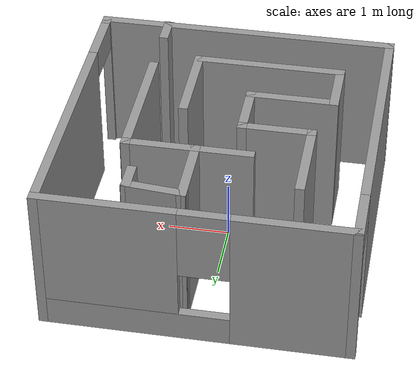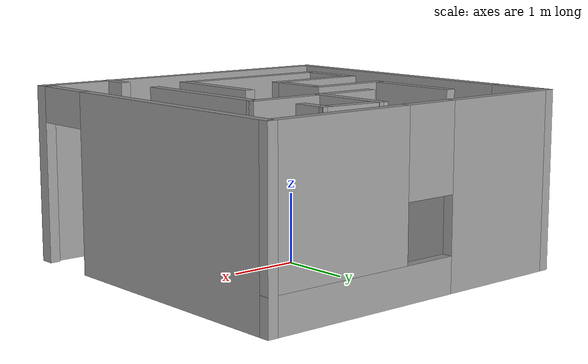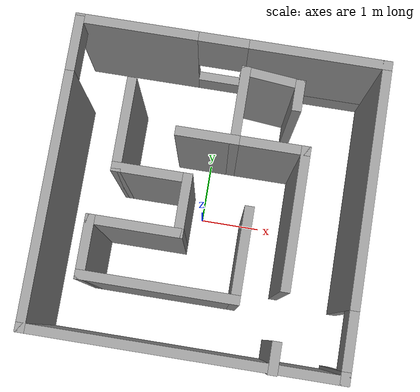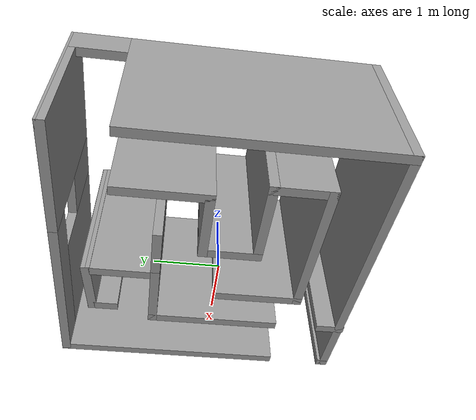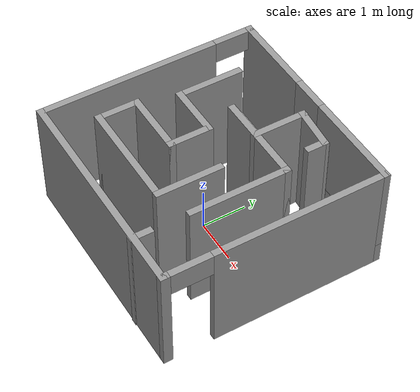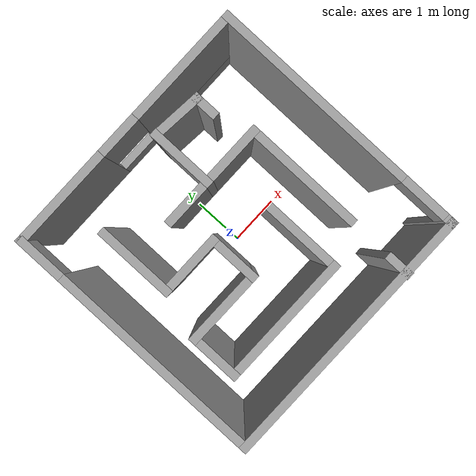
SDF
<?xml version='1.0'?>
<sdf version='1.6'>
  <model name='maze2'>
    <pose frame=''>0.085 0.08622 0 0 -0 0</pose>
    <link name='Wall_0'>
      <collision name='Wall_0_Collision'>
        <geometry>
          <box>
            <size>5 0.15 2.5</size>
          </box>
        </geometry>
        <pose frame=''>0 0 1.25 0 -0 0</pose>
      </collision>
      <visual name='Wall_0_Visual'>
        <pose frame=''>0 0 1.25 0 -0 0</pose>
        <geometry>
          <box>
            <size>5 0.15 2.5</size>
          </box>
        </geometry>
        <material>
          <script>
            <uri>file://media/materials/scripts/gazebo.material</uri>
            <name>Gazebo/Grey</name>
          </script>
          <ambient>1 1 1 1</ambient>
        </material>
        <meta>
          <layer>0</layer>
        </meta>
      </visual>
      <pose frame=''>-0 -2.41622 0 0 -0 0</pose>
    </link>
    <link name='Wall_10'>
      <collision name='Wall_10_Collision'>
        <geometry>
          <box>
            <size>1.5 0.15 2.5</size>
          </box>
        </geometry>
        <pose frame=''>0 0 1.25 0 -0 0</pose>
      </collision>
      <visual name='Wall_10_Visual'>
        <pose frame=''>0 0 1.25 0 -0 0</pose>
        <geometry>
          <box>
            <size>1.5 0.15 2.5</size>
          </box>
        </geometry>
        <material>
          <script>
            <uri>file://media/materials/scripts/gazebo.material</uri>
            <name>Gazebo/Grey</name>
          </script>
          <ambient>1 1 1 1</ambient>
        </material>
        <meta>
          <layer>0</layer>
        </meta>
      </visual>
      <pose frame=''>-1.44817 0.867949 0 0 -0 -1.5708</pose>
    </link>
    <link name='Wall_11'>
      <collision name='Wall_11_Collision'>
        <geometry>
          <box>
            <size>1.25 0.15 2.5</size>
          </box>
        </geometry>
        <pose frame=''>0 0 1.25 0 -0 0</pose>
      </collision>
      <visual name='Wall_11_Visual'>
        <pose frame=''>0 0 1.25 0 -0 0</pose>
        <geometry>
          <box>
            <size>1.25 0.15 2.5</size>
          </box>
        </geometry>
        <material>
          <script>
            <uri>file://media/materials/scripts/gazebo.material</uri>
            <name>Gazebo/Grey</name>
          </script>
          <ambient>1 1 1 1</ambient>
        </material>
        <meta>
          <layer>0</layer>
        </meta>
      </visual>
      <pose frame=''>-0.898169 0.192949 0 0 -0 0</pose>
    </link>
    <link name='Wall_12'>
      <collision name='Wall_12_Collision'>
        <geometry>
          <box>
            <size>1 0.15 2.5</size>
          </box>
        </geometry>
        <pose frame=''>0 0 1.25 0 -0 0</pose>
      </collision>
      <visual name='Wall_12_Visual'>
        <pose frame=''>0 0 1.25 0 -0 0</pose>
        <geometry>
          <box>
            <size>1 0.15 2.5</size>
          </box>
        </geometry>
        <material>
          <script>
            <uri>file://media/materials/scripts/gazebo.material</uri>
            <name>Gazebo/Grey</name>
          </script>
          <ambient>1 1 1 1</ambient>
        </material>
        <meta>
          <layer>0</layer>
        </meta>
      </visual>
      <pose frame=''>-0.348169 -0.232051 0 0 -0 -1.5708</pose>
    </link>
    <link name='Wall_13'>
      <collision name='Wall_13_Collision'>
        <geometry>
          <box>
            <size>1.5 0.15 2.5</size>
          </box>
        </geometry>
        <pose frame=''>0 0 1.25 0 -0 0</pose>
      </collision>
      <visual name='Wall_13_Visual'>
        <pose frame=''>0 0 1.25 0 -0 0</pose>
        <geometry>
          <box>
            <size>1.5 0.15 2.5</size>
          </box>
        </geometry>
        <material>
          <script>
            <uri>file://media/materials/scripts/gazebo.material</uri>
            <name>Gazebo/Grey</name>
          </script>
          <ambient>1 1 1 1</ambient>
        </material>
        <meta>
          <layer>0</layer>
        </meta>
      </visual>
      <pose frame=''>-1.02317 -0.657051 0 0 -0 3.14159</pose>
    </link>
    <link name='Wall_14'>
      <collision name='Wall_14_Collision'>
        <geometry>
          <box>
            <size>1 0.15 2.5</size>
          </box>
        </geometry>
        <pose frame=''>0 0 1.25 0 -0 0</pose>
      </collision>
      <visual name='Wall_14_Visual'>
        <pose frame=''>0 0 1.25 0 -0 0</pose>
        <geometry>
          <box>
            <size>1 0.15 2.5</size>
          </box>
        </geometry>
        <material>
          <script>
            <uri>file://media/materials/scripts/gazebo.material</uri>
            <name>Gazebo/Grey</name>
          </script>
          <ambient>1 1 1 1</ambient>
        </material>
        <meta>
          <layer>0</layer>
        </meta>
      </visual>
      <pose frame=''>-1.69817 -1.08205 0 0 -0 -1.5708</pose>
    </link>
    <link name='Wall_15'>
      <collision name='Wall_15_Collision'>
        <geometry>
          <box>
            <size>2.5 0.15 2.5</size>
          </box>
        </geometry>
        <pose frame=''>0 0 1.25 0 -0 0</pose>
      </collision>
      <visual name='Wall_15_Visual'>
        <pose frame=''>0 0 1.25 0 -0 0</pose>
        <geometry>
          <box>
            <size>2.5 0.15 2.5</size>
          </box>
        </geometry>
        <material>
          <script>
            <uri>file://media/materials/scripts/gazebo.material</uri>
            <name>Gazebo/Grey</name>
          </script>
          <ambient>1 1 1 1</ambient>
        </material>
        <meta>
          <layer>0</layer>
        </meta>
      </visual>
      <pose frame=''>-0.523169 -1.50705 0 0 -0 0</pose>
    </link>
    <link name='Wall_16'>
      <collision name='Wall_16_Collision'>
        <geometry>
          <box>
            <size>1.5 0.15 2.5</size>
          </box>
        </geometry>
        <pose frame=''>0 0 1.25 0 -0 0</pose>
      </collision>
      <visual name='Wall_16_Visual'>
        <pose frame=''>0 0 1.25 0 -0 0</pose>
        <geometry>
          <box>
            <size>1.5 0.15 2.5</size>
          </box>
        </geometry>
        <material>
          <script>
            <uri>file://media/materials/scripts/gazebo.material</uri>
            <name>Gazebo/Grey</name>
          </script>
          <ambient>1 1 1 1</ambient>
        </material>
        <meta>
          <layer>0</layer>
        </meta>
      </visual>
      <pose frame=''>0.651831 -0.832051 0 0 -0 1.5708</pose>
    </link>
    <link name='Wall_19'>
      <collision name='Wall_19_Collision'>
        <geometry>
          <box>
            <size>1.25 0.15 2.5</size>
          </box>
        </geometry>
        <pose frame=''>0 0 1.25 0 -0 0</pose>
      </collision>
      <visual name='Wall_19_Visual'>
        <pose frame=''>0 0 1.25 0 -0 0</pose>
        <geometry>
          <box>
            <size>1.25 0.15 2.5</size>
          </box>
        </geometry>
        <material>
          <script>
            <uri>file://media/materials/scripts/gazebo.material</uri>
            <name>Gazebo/Grey</name>
          </script>
          <ambient>1 1 1 1</ambient>
        </material>
        <meta>
          <layer>0</layer>
        </meta>
      </visual>
      <pose frame=''>0.267544 1.44515 0 0 -0 -1.5708</pose>
    </link>
    <link name='Wall_20'>
      <collision name='Wall_20_Collision'>
        <geometry>
          <box>
            <size>1 0.15 2.5</size>
          </box>
        </geometry>
        <pose frame=''>0 0 1.25 0 -0 0</pose>
      </collision>
      <visual name='Wall_20_Visual'>
        <pose frame=''>0 0 1.25 0 -0 0</pose>
        <geometry>
          <box>
            <size>1 0.15 2.5</size>
          </box>
        </geometry>
        <material>
          <script>
            <uri>file://media/materials/scripts/gazebo.material</uri>
            <name>Gazebo/Grey</name>
          </script>
          <ambient>1 1 1 1</ambient>
        </material>
        <meta>
          <layer>0</layer>
        </meta>
      </visual>
      <pose frame=''>-0.157456 0.895153 0 0 -0 3.14159</pose>
    </link>
    <link name='Wall_22'>
      <collision name='Wall_22_Collision'>
        <geometry>
          <box>
            <size>1.25 0.15 2.5</size>
          </box>
        </geometry>
        <pose frame=''>0 0 1.25 0 -0 0</pose>
      </collision>
      <visual name='Wall_22_Visual'>
        <pose frame=''>0 0 1.25 0 -0 0</pose>
        <geometry>
          <box>
            <size>1.25 0.15 2.5</size>
          </box>
        </geometry>
        <material>
          <script>
            <uri>file://media/materials/scripts/gazebo.material</uri>
            <name>Gazebo/Grey</name>
          </script>
          <ambient>1 1 1 1</ambient>
        </material>
        <meta>
          <layer>0</layer>
        </meta>
      </visual>
      <pose frame=''>0.817544 0.895153 0 0 -0 0</pose>
    </link>
    <link name='Wall_23'>
      <collision name='Wall_23_Collision'>
        <geometry>
          <box>
            <size>2.25 0.15 2.5</size>
          </box>
        </geometry>
        <pose frame=''>0 0 1.25 0 -0 0</pose>
      </collision>
      <visual name='Wall_23_Visual'>
        <pose frame=''>0 0 1.25 0 -0 0</pose>
        <geometry>
          <box>
            <size>2.25 0.15 2.5</size>
          </box>
        </geometry>
        <material>
          <script>
            <uri>file://media/materials/scripts/gazebo.material</uri>
            <name>Gazebo/Grey</name>
          </script>
          <ambient>1 1 1 1</ambient>
        </material>
        <meta>
          <layer>0</layer>
        </meta>
      </visual>
      <pose frame=''>1.36754 -0.154847 0 0 -0 -1.5708</pose>
    </link>
    <link name='Wall_27'>
      <collision name='Wall_27_Collision'>
        <geometry>
          <box>
            <size>0.5 0.15 2.5</size>
          </box>
        </geometry>
        <pose frame=''>0 0 1.25 0 -0 0</pose>
      </collision>
      <visual name='Wall_27_Visual'>
        <pose frame=''>0 0 1.25 0 -0 0</pose>
        <geometry>
          <box>
            <size>0.5 0.15 2.5</size>
          </box>
        </geometry>
        <material>
          <script>
            <uri>file://media/materials/scripts/gazebo.material</uri>
            <name>Gazebo/Grey</name>
          </script>
          <ambient>1 1 1 1</ambient>
        </material>
        <meta>
          <layer>0</layer>
        </meta>
      </visual>
      <pose frame=''>1.35815 -2.25878 0 0 -0 1.5708</pose>
    </link>
    <link name='Wall_31'>
      <collision name='Wall_31_Collision'>
        <geometry>
          <box>
            <size>0.5 0.15 2.5</size>
          </box>
        </geometry>
        <pose frame=''>0 0 1.25 0 -0 0</pose>
      </collision>
      <visual name='Wall_31_Visual'>
        <pose frame=''>0 0 1.25 0 -0 0</pose>
        <geometry>
          <box>
            <size>0.5 0.15 2.5</size>
          </box>
        </geometry>
        <material>
          <script>
            <uri>file://media/materials/scripts/gazebo.material</uri>
            <name>Gazebo/Grey</name>
          </script>
          <ambient>1 1 1 1</ambient>
        </material>
        <meta>
          <layer>0</layer>
        </meta>
      </visual>
      <pose frame=''>1.13205 1.74035 0 0 -0 -1.5708</pose>
    </link>
    <link name='Wall_33'>
      <collision name='Wall_33_Collision'>
        <geometry>
          <box>
            <size>1.01818 0.15 2.5</size>
          </box>
        </geometry>
        <pose frame=''>0 0 1.25 0 -0 0</pose>
      </collision>
      <visual name='Wall_33_Visual'>
        <pose frame=''>0 0 1.25 0 -0 0</pose>
        <geometry>
          <box>
            <size>1.01818 0.15 2.5</size>
          </box>
        </geometry>
        <material>
          <script>
            <uri>file://media/materials/scripts/gazebo.material</uri>
            <name>Gazebo/Grey</name>
          </script>
          <ambient>1 1 1 1</ambient>
        </material>
        <meta>
          <layer>0</layer>
        </meta>
      </visual>
      <pose frame=''>0.699797 1.95525 0 0 -0 3.04955</pose>
    </link>
    <link name='Wall_4'>
      <pose frame=''>2.425 0.00878 0 0 -0 1.5708</pose>
      <visual name='Wall_4_Visual_0'>
        <pose frame=''>-2.39703 0 1.25 0 -0 0</pose>
        <geometry>
          <box>
            <size>0.205944 0.15 2.5</size>
          </box>
        </geometry>
        <material>
          <script>
            <uri>file://media/materials/scripts/gazebo.material</uri>
            <name>Gazebo/Grey</name>
          </script>
          <ambient>1 1 1 1</ambient>
        </material>
        <meta>
          <layer>0</layer>
        </meta>
      </visual>
      <collision name='Wall_4_Collision_0'>
        <geometry>
          <box>
            <size>0.205944 0.15 2.5</size>
          </box>
        </geometry>
        <pose frame=''>-2.39703 0 1.25 0 -0 0</pose>
      </collision>
      <visual name='Wall_4_Visual_1'>
        <pose frame=''>0.552972 0 1.25 0 -0 0</pose>
        <geometry>
          <box>
            <size>3.89406 0.15 2.5</size>
          </box>
        </geometry>
        <material>
          <script>
            <uri>file://media/materials/scripts/gazebo.material</uri>
            <name>Gazebo/Grey</name>
          </script>
          <ambient>1 1 1 1</ambient>
        </material>
        <meta>
          <layer>0</layer>
        </meta>
      </visual>
      <collision name='Wall_4_Collision_1'>
        <geometry>
          <box>
            <size>3.89406 0.15 2.5</size>
          </box>
        </geometry>
        <pose frame=''>0.552972 0 1.25 0 -0 0</pose>
      </collision>
      <visual name='Wall_4_Visual_2'>
        <pose frame=''>-1.84406 0 2.25 0 -0 0</pose>
        <geometry>
          <box>
            <size>0.9 0.15 0.5</size>
          </box>
        </geometry>
        <material>
          <script>
            <uri>file://media/materials/scripts/gazebo.material</uri>
            <name>Gazebo/Grey</name>
          </script>
          <ambient>1 1 1 1</ambient>
        </material>
        <meta>
          <layer>0</layer>
        </meta>
      </visual>
      <collision name='Wall_4_Collision_2'>
        <geometry>
          <box>
            <size>0.9 0.15 0.5</size>
          </box>
        </geometry>
        <pose frame=''>-1.84406 0 2.25 0 -0 0</pose>
      </collision>
    </link>
    <link name='Wall_6'>
      <pose frame=''>-2.425 0.00878 0 0 -0 1.5708</pose>
      <visual name='Wall_6_Visual_0'>
        <pose frame=''>-0.468514 0 1.25 0 -0 0</pose>
        <geometry>
          <box>
            <size>4.06297 0.15 2.5</size>
          </box>
        </geometry>
        <material>
          <script>
            <uri>file://media/materials/scripts/gazebo.material</uri>
            <name>Gazebo/Grey</name>
          </script>
          <ambient>1 1 1 1</ambient>
        </material>
        <meta>
          <layer>0</layer>
        </meta>
      </visual>
      <collision name='Wall_6_Collision_0'>
        <geometry>
          <box>
            <size>4.06297 0.15 2.5</size>
          </box>
        </geometry>
        <pose frame=''>-0.468514 0 1.25 0 -0 0</pose>
      </collision>
      <visual name='Wall_6_Visual_1'>
        <pose frame=''>2.48149 0 1.25 0 -0 0</pose>
        <geometry>
          <box>
            <size>0.037027 0.15 2.5</size>
          </box>
        </geometry>
        <material>
          <script>
            <uri>file://media/materials/scripts/gazebo.material</uri>
            <name>Gazebo/Grey</name>
          </script>
          <ambient>1 1 1 1</ambient>
        </material>
        <meta>
          <layer>0</layer>
        </meta>
      </visual>
      <collision name='Wall_6_Collision_1'>
        <geometry>
          <box>
            <size>0.037027 0.15 2.5</size>
          </box>
        </geometry>
        <pose frame=''>2.48149 0 1.25 0 -0 0</pose>
      </collision>
      <visual name='Wall_6_Visual_2'>
        <pose frame=''>2.01297 0 2.25 0 -0 0</pose>
        <geometry>
          <box>
            <size>0.9 0.15 0.5</size>
          </box>
        </geometry>
        <material>
          <script>
            <uri>file://media/materials/scripts/gazebo.material</uri>
            <name>Gazebo/Grey</name>
          </script>
          <ambient>1 1 1 1</ambient>
        </material>
        <meta>
          <layer>0</layer>
        </meta>
      </visual>
      <collision name='Wall_6_Collision_2'>
        <geometry>
          <box>
            <size>0.9 0.15 0.5</size>
          </box>
        </geometry>
        <pose frame=''>2.01297 0 2.25 0 -0 0</pose>
      </collision>
    </link>
    <link name='Wall_7'>
      <pose frame=''>-0 2.43378 0 0 -0 0</pose>
      <visual name='Wall_7_Visual_0'>
        <pose frame=''>-1.52238 0 1.25 0 -0 0</pose>
        <geometry>
          <box>
            <size>1.95524 0.15 2.5</size>
          </box>
        </geometry>
        <material>
          <script>
            <uri>file://media/materials/scripts/gazebo.material</uri>
            <name>Gazebo/Grey</name>
          </script>
          <ambient>1 1 1 1</ambient>
        </material>
        <meta>
          <layer>0</layer>
        </meta>
      </visual>
      <collision name='Wall_7_Collision_0'>
        <geometry>
          <box>
            <size>1.95524 0.15 2.5</size>
          </box>
        </geometry>
        <pose frame=''>-1.52238 0 1.25 0 -0 0</pose>
      </collision>
      <visual name='Wall_7_Visual_1'>
        <pose frame=''>0.97762 0 0.25 0 -0 0</pose>
        <geometry>
          <box>
            <size>3.04476 0.15 0.5</size>
          </box>
        </geometry>
        <material>
          <script>
            <uri>file://media/materials/scripts/gazebo.material</uri>
            <name>Gazebo/Grey</name>
          </script>
          <ambient>1 1 1 1</ambient>
        </material>
        <meta>
          <layer>0</layer>
        </meta>
      </visual>
      <collision name='Wall_7_Collision_1'>
        <geometry>
          <box>
            <size>3.04476 0.15 0.5</size>
          </box>
        </geometry>
        <pose frame=''>0.97762 0 0.25 0 -0 0</pose>
      </collision>
      <visual name='Wall_7_Visual_2'>
        <pose frame=''>1.37762 0 1.5 0 -0 0</pose>
        <geometry>
          <box>
            <size>2.24476 0.15 2</size>
          </box>
        </geometry>
        <material>
          <script>
            <uri>file://media/materials/scripts/gazebo.material</uri>
            <name>Gazebo/Grey</name>
          </script>
          <ambient>1 1 1 1</ambient>
        </material>
        <meta>
          <layer>0</layer>
        </meta>
      </visual>
      <collision name='Wall_7_Collision_2'>
        <geometry>
          <box>
            <size>2.24476 0.15 2</size>
          </box>
        </geometry>
        <pose frame=''>1.37762 0 1.5 0 -0 0</pose>
      </collision>
      <visual name='Wall_7_Visual_3'>
        <pose frame=''>-0.144759 0 1.9 0 -0 0</pose>
        <geometry>
          <box>
            <size>0.8 0.15 1.2</size>
          </box>
        </geometry>
        <material>
          <script>
            <uri>file://media/materials/scripts/gazebo.material</uri>
            <name>Gazebo/Grey</name>
          </script>
          <ambient>1 1 1 1</ambient>
        </material>
        <meta>
          <layer>0</layer>
        </meta>
      </visual>
      <collision name='Wall_7_Collision_3'>
        <geometry>
          <box>
            <size>0.8 0.15 1.2</size>
          </box>
        </geometry>
        <pose frame=''>-0.144759 0 1.9 0 -0 0</pose>
      </collision>
    </link>
    <static>1</static>
  </model>
</sdf>
